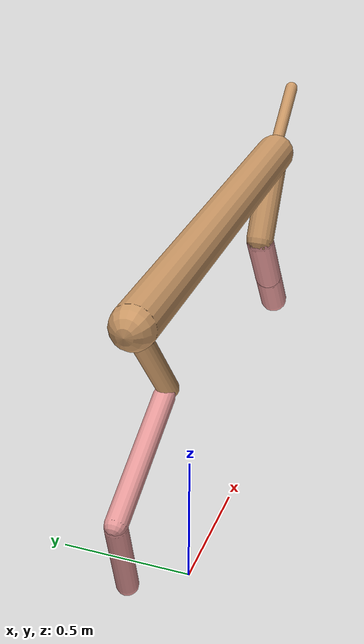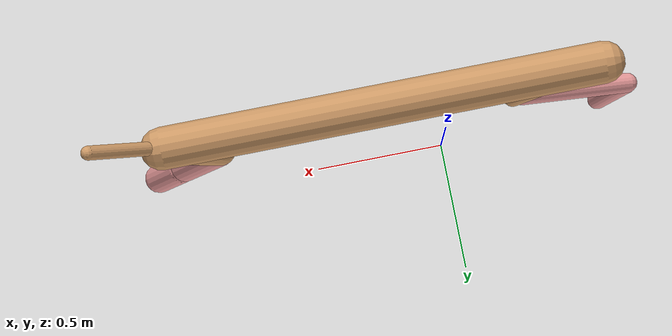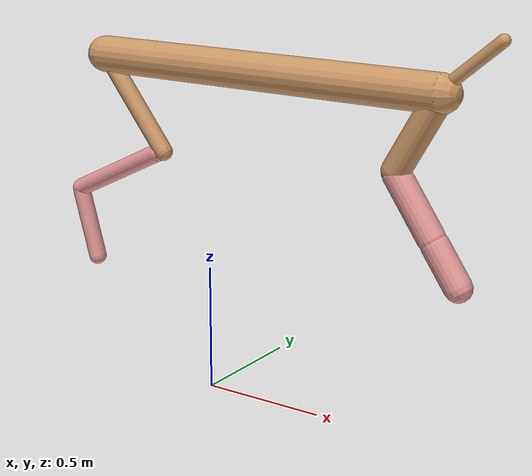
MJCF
<mujoco model="cheetah">
  <compiler angle="radian" coordinate="local" inertiafromgeom="true" settotalmass="14" />
  <default>
    <joint armature=".1" damping=".01" limited="true" solimplimit="0 .8 .03" solreflimit=".02 1" stiffness="8" />
    <geom conaffinity="0" condim="3" contype="1" friction="0.8 .1 .1" rgba="0.8 0.6 .4 1" solimp="0.0 0.8 0.01" solref="0.02 1" />
    <motor ctrllimited="true" ctrlrange="-1 1" />
  </default>
  <size nstack="300000" nuser_geom="1" />
  <option gravity="0 0 -9.81" timestep="0.01" />
  <worldbody>
    <body name="torso" pos="0.0 0.0 1.30067297268571">
      <joint armature="0" axis="1 0 0" damping="0" limited="false" name="ignorex" pos="0 0 0" stiffness="0" type="slide" />
      <joint armature="0" axis="0 0 1" damping="0" limited="false" name="ignorez" pos="0 0 0" stiffness="0" type="slide" />
      <joint armature="0" axis="0 1 0" damping="0" limited="false" name="ignorey" pos="0 0 0" stiffness="0" type="hinge" />
      <geom fromto="-0.5 0.0 0.0 0.9804540638983501 0.0 0.0" name="torso" size="0.0720392349353595" type="capsule" />
      <geom axisangle="0 1 0 .87" name="head" pos="1.0804540638983502 0.0 0.1" size="0.023558485438126397 0.15" type="capsule" />

      <body name="bthigh" pos="-.5 0 0">
        <joint axis="0 1 0" damping="6" name="bthigh" pos="0 0 0" range="-.52 1.05" stiffness="240" type="hinge" />
        <geom axisangle="0 1 0 -3.8" name="bthigh" pos="0.14500367152857405 0.0 -0.18850477298714624" size="0.03583203639115199 0.2188115093554474" type="capsule" />
        <body name="bshin" pos="0.2500073430571481 0.0 -0.3670095459742925">
          <joint axis="0 1 0" damping="4.5" name="bshin" pos="0 0 0" range="-.785 .785" stiffness="180" type="hinge" />
          <geom axisangle="0 1 0 -2.03" name="bshin" pos="-0.20829553894095537 0.0 -0.10414776947047769" rgba="0.9 0.6 0.6 1" size="0.03583203639115199 0.2263567338159801" type="capsule" />
          <body name="bfoot" pos="-0.41659107788191074 0.0 -0.20829553894095537">
            <joint axis="0 1 0" damping="3" name="bfoot" pos="0 0 0" range="-.4 .785" stiffness="120" type="hinge" />
            <geom axisangle="0 1 0 -.27" name="bfoot" pos="0.044138291203207475 0.0 -0.14271380822370416" rgba="0.9 0.6 0.6 1" size="0.03583203639115199 0.1418502198580142" type="capsule" />
            <inertial mass="10" />
          </body>
        </body>
      </body>
      <body name="fthigh" pos="0.9804540638983501 0.0 0.0">
        <joint axis="0 1 0" damping="4.5" name="fthigh" pos="0 0 0" range="-1.5 0.8" stiffness="180" type="hinge" />
        <geom axisangle="0 1 0 .52" name="fthigh" pos="-0.08639679769495417 0.0 -0.14810879604849286" size="0.052677155708050066 0.16554165622621295" type="capsule" />
        <body name="fshin" pos="-0.17279359538990835 0.0 -0.2962175920969857">
          <joint axis="0 1 0" damping="3" name="fshin" pos="0 0 0" range="-1.2 1.1" stiffness="120" type="hinge" />
          <geom axisangle="0 1 0 -.6" name="fshin" pos="0.0801849641101594 0.0 -0.11102533492175917" rgba="0.9 0.6 0.6 1" size="0.052677155708050066 0.13193545533818474" type="capsule" />
          <body name="ffoot" pos="0.1603699282203188 0.0 -0.22205066984351834">
            <joint axis="0 1 0" damping="1.5" name="ffoot" pos="0 0 0" range="-3.1 -0.3" stiffness="60" type="hinge" />
            <geom axisangle="0 1 0 -.6" name="ffoot" pos="0.05426165665170464 0.0 -0.08440702145820723" rgba="0.9 0.6 0.6 1" size="0.052677155708050066 0.0871271874874805" type="capsule" />
            <inertial mass="10" />
          </body>
        </body>
      </body>
    </body>
  </worldbody>
  <actuator>
    <motor gear="120" joint="bthigh" name="bthigh" />
    <motor gear="90" joint="bshin" name="bshin" />
    <motor gear="60" joint="bfoot" name="bfoot" />
    <motor gear="120" joint="fthigh" name="fthigh" />
    <motor gear="60" joint="fshin" name="fshin" />
    <motor gear="30" joint="ffoot" name="ffoot" />
  </actuator>
</mujoco>
